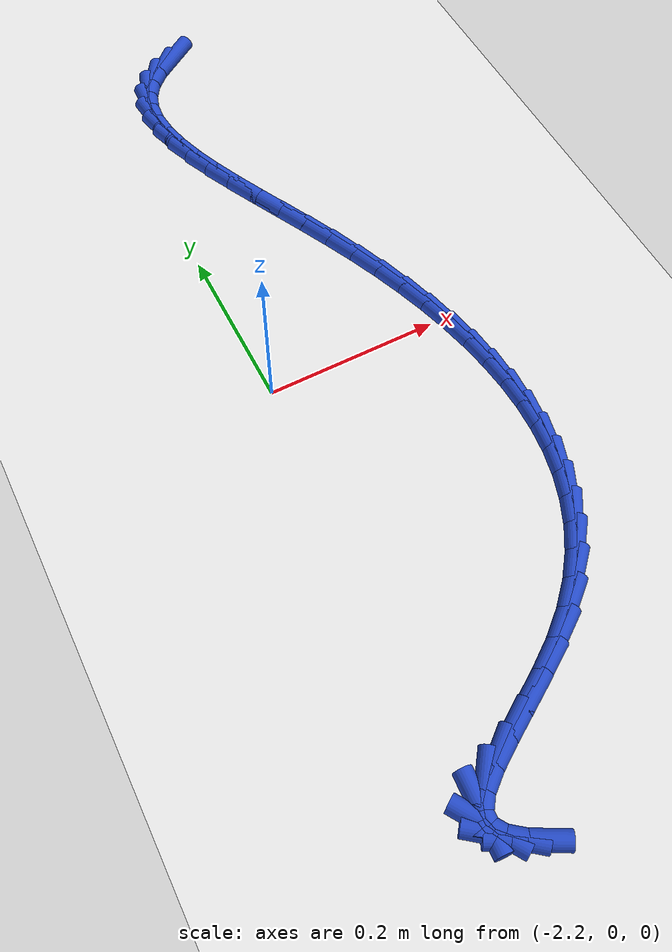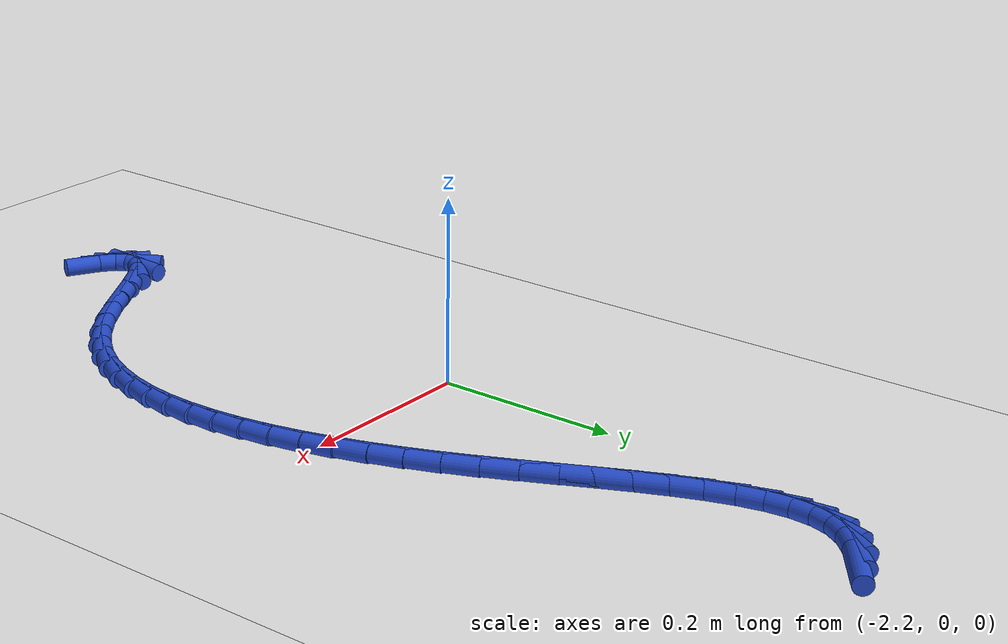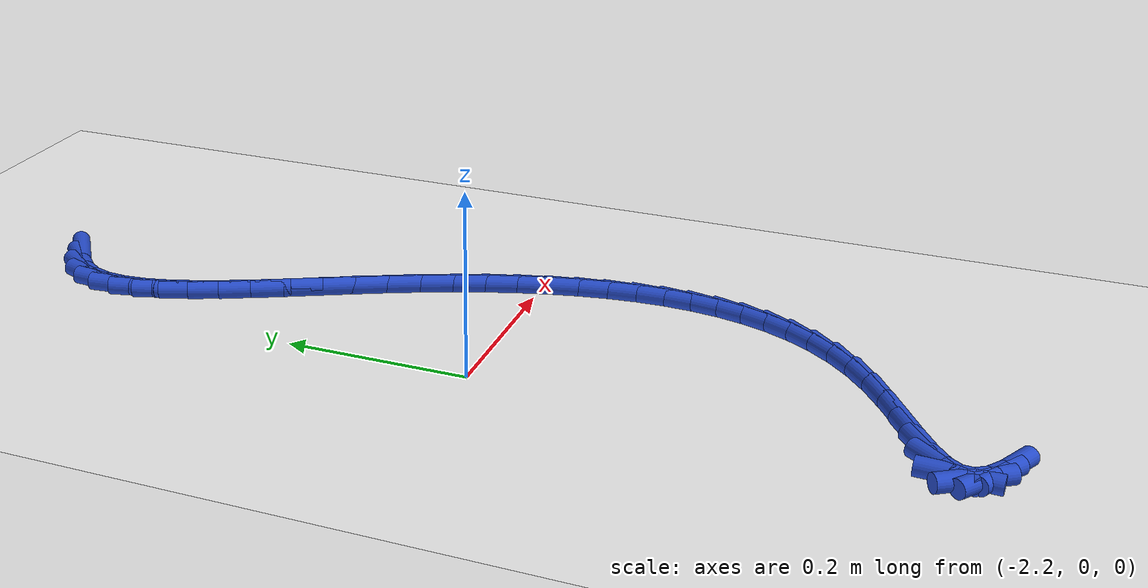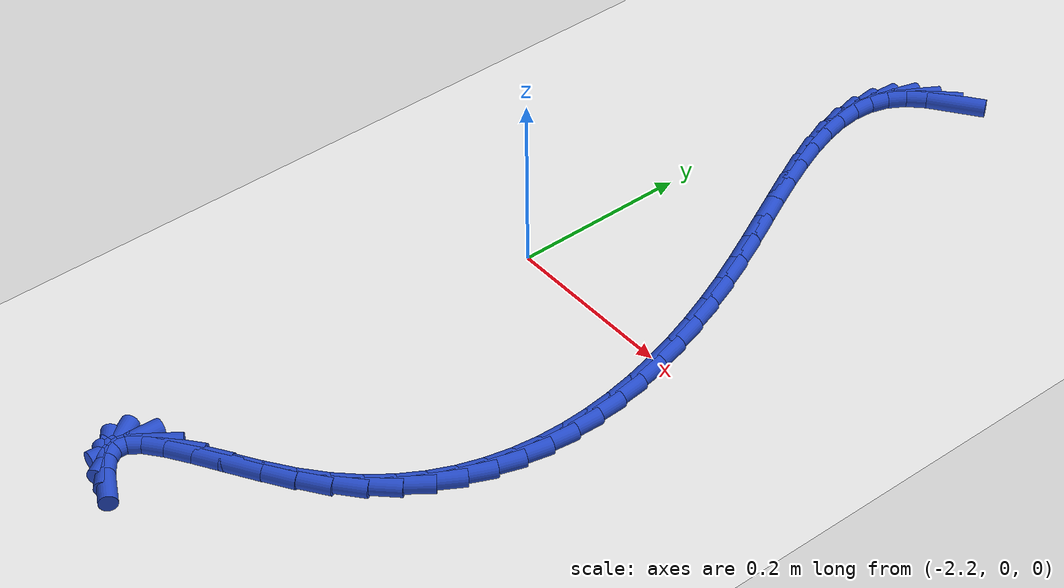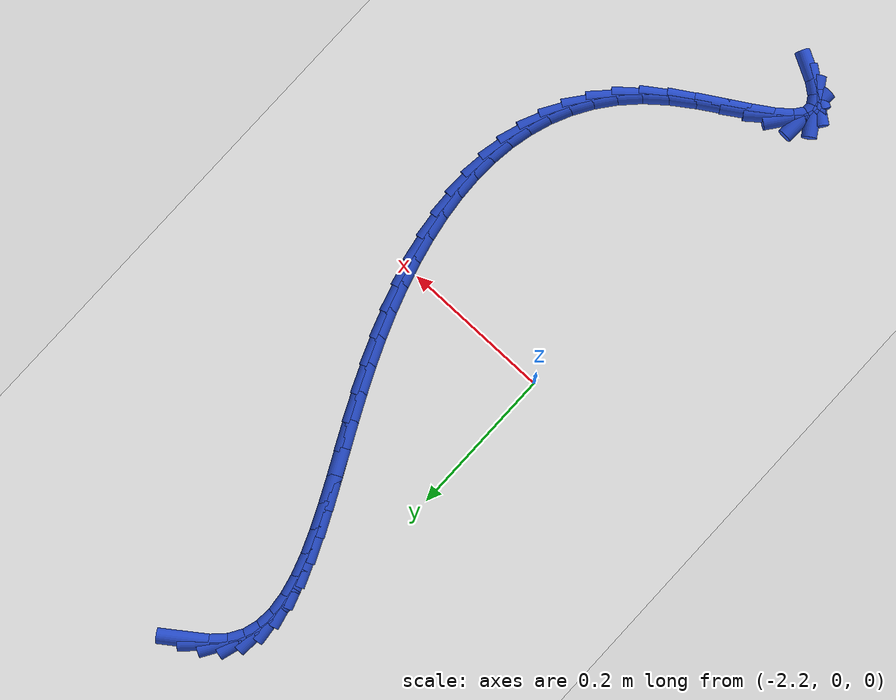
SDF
<sdf version="1.6">
 <world name="default">
  <model name="ground_plane">
   <static>1</static>
   <link name="link">
    <collision name="collision">
     <geometry><plane><normal>0 0 1</normal><size>100 100</size></plane></geometry>
     <surface><friction><ode><mu>100</mu><mu2>50</mu2></ode></friction></surface>
    </collision>
    <visual name="visual">
     <cast_shadows>0</cast_shadows>
     <geometry><plane><normal>0 0 1</normal><size>100 100</size></plane></geometry>
     <material>
      <script><uri>file://media/materials/scripts/gazebo.material</uri><name>Gazebo/WhiteGlow</name></script>
     </material>
    </visual>
   </link>
  </model>
  <model name="line">
   <link name="link_106">
    <pose>-2.0986186612040756 0.5256165768651444 0.01 0 1.57 0.6210910139068517</pose>
    <collision name="collision">
     <geometry><cylinder><radius>0.01</radius><length>0.08</length></cylinder></geometry>
    </collision>
    <visual name="visual">
     <material>
      <script><name>Gazebo/Blue</name><uri>file://media/materials/scripts/gazebo.material</uri></script>
     </material>
     <geometry><cylinder><radius>0.01</radius><length>0.08</length></cylinder></geometry>
    </visual>
   </link>
   <link name="link_107">
    <pose>-2.119865122668184 0.5104135150358946 0.01 0 1.57 0.7860165793328565</pose>
    <collision name="collision">
     <geometry><cylinder><radius>0.01</radius><length>0.08</length></cylinder></geometry>
    </collision>
    <visual name="visual">
     <material>
      <script><name>Gazebo/Blue</name><uri>file://media/materials/scripts/gazebo.material</uri></script>
     </material>
     <geometry><cylinder><radius>0.01</radius><length>0.08</length></cylinder></geometry>
    </visual>
   </link>
   <link name="link_108">
    <pose>-2.136709047449886 0.49354874425703865 0.01 0 1.57 1.0204650539570703</pose>
    <collision name="collision">
     <geometry><cylinder><radius>0.01</radius><length>0.08</length></cylinder></geometry>
    </collision>
    <visual name="visual">
     <material>
      <script><name>Gazebo/Blue</name><uri>file://media/materials/scripts/gazebo.material</uri></script>
     </material>
     <geometry><cylinder><radius>0.01</radius><length>0.08</length></cylinder></geometry>
    </visual>
   </link>
   <link name="link_109">
    <pose>-2.14835118074542 0.4745740517146475 0.01 0 1.57 1.2809299250338098</pose>
    <collision name="collision">
     <geometry><cylinder><radius>0.01</radius><length>0.08</length></cylinder></geometry>
    </collision>
    <visual name="visual">
     <material>
      <script><name>Gazebo/Blue</name><uri>file://media/materials/scripts/gazebo.material</uri></script>
     </material>
     <geometry><cylinder><radius>0.01</radius><length>0.08</length></cylinder></geometry>
    </visual>
   </link>
   <link name="link_110">
    <pose>-2.1546785187539643 0.45336040184977455 0.01 0 1.57 1.5045091424512773</pose>
    <collision name="collision">
     <geometry><cylinder><radius>0.01</radius><length>0.08</length></cylinder></geometry>
    </collision>
    <visual name="visual">
     <material>
      <script><name>Gazebo/Blue</name><uri>file://media/materials/scripts/gazebo.material</uri></script>
     </material>
     <geometry><cylinder><radius>0.01</radius><length>0.08</length></cylinder></geometry>
    </visual>
   </link>
   <link name="link_111">
    <pose>-2.156224028266525 0.43007920182693293 0.01 0 1.57 -1.4647714634028515</pose>
    <collision name="collision">
     <geometry><cylinder><radius>0.01</radius><length>0.08</length></cylinder></geometry>
    </collision>
    <visual name="visual">
     <material>
      <script><name>Gazebo/Blue</name><uri>file://media/materials/scripts/gazebo.material</uri></script>
     </material>
     <geometry><cylinder><radius>0.01</radius><length>0.08</length></cylinder></geometry>
    </visual>
   </link>
   <link name="link_112">
    <pose>-2.15354579972807 0.4049135438921469 0.01 0 1.57 -1.3389220290332065</pose>
    <collision name="collision">
     <geometry><cylinder><radius>0.01</radius><length>0.08</length></cylinder></geometry>
    </collision>
    <visual name="visual">
     <material>
      <script><name>Gazebo/Blue</name><uri>file://media/materials/scripts/gazebo.material</uri></script>
     </material>
     <geometry><cylinder><radius>0.01</radius><length>0.08</length></cylinder></geometry>
    </visual>
   </link>
   <link name="link_113">
    <pose>-2.1472019235835664 0.3780465202914411 0.01 0 1.57 -1.2493734119647293</pose>
    <collision name="collision">
     <geometry><cylinder><radius>0.01</radius><length>0.08</length></cylinder></geometry>
    </collision>
    <visual name="visual">
     <material>
      <script><name>Gazebo/Blue</name><uri>file://media/materials/scripts/gazebo.material</uri></script>
     </material>
     <geometry><cylinder><radius>0.01</radius><length>0.08</length></cylinder></geometry>
    </visual>
   </link>
   <link name="link_114">
    <pose>-2.1377504902779827 0.34966122327083965 0.01 0 1.57 -1.1870250132183828</pose>
    <collision name="collision">
     <geometry><cylinder><radius>0.01</radius><length>0.08</length></cylinder></geometry>
    </collision>
    <visual name="visual">
     <material>
      <script><name>Gazebo/Blue</name><uri>file://media/materials/scripts/gazebo.material</uri></script>
     </material>
     <geometry><cylinder><radius>0.01</radius><length>0.08</length></cylinder></geometry>
    </visual>
   </link>
   <link name="link_115">
    <pose>-2.1257495902562864 0.31994074507636727 0.01 0 1.57 -1.1452621939268486</pose>
    <collision name="collision">
     <geometry><cylinder><radius>0.01</radius><length>0.08</length></cylinder></geometry>
    </collision>
    <visual name="visual">
     <material>
      <script><name>Gazebo/Blue</name><uri>file://media/materials/scripts/gazebo.material</uri></script>
     </material>
     <geometry><cylinder><radius>0.01</radius><length>0.08</length></cylinder></geometry>
    </visual>
   </link>
   <link name="link_116">
    <pose>-2.1117573139634467 0.28906817795404827 0.01 0 1.57 -1.1196680481472614</pose>
    <collision name="collision">
     <geometry><cylinder><radius>0.01</radius><length>0.08</length></cylinder></geometry>
    </collision>
    <visual name="visual">
     <material>
      <script><name>Gazebo/Blue</name><uri>file://media/materials/scripts/gazebo.material</uri></script>
     </material>
     <geometry><cylinder><radius>0.01</radius><length>0.08</length></cylinder></geometry>
    </visual>
   </link>
   <link name="link_117">
    <pose>-2.0963317518444295 0.2572266141499071 0.01 0 1.57 -1.1074669449753645</pose>
    <collision name="collision">
     <geometry><cylinder><radius>0.01</radius><length>0.08</length></cylinder></geometry>
    </collision>
    <visual name="visual">
     <material>
      <script><name>Gazebo/Blue</name><uri>file://media/materials/scripts/gazebo.material</uri></script>
     </material>
     <geometry><cylinder><radius>0.01</radius><length>0.08</length></cylinder></geometry>
    </visual>
   </link>
   <link name="link_118">
    <pose>-2.080030994344204 0.22459914590996807 0.01 0 1.57 -1.1070831840129467</pose>
    <collision name="collision">
     <geometry><cylinder><radius>0.01</radius><length>0.08</length></cylinder></geometry>
    </collision>
    <visual name="visual">
     <material>
      <script><name>Gazebo/Blue</name><uri>file://media/materials/scripts/gazebo.material</uri></script>
     </material>
     <geometry><cylinder><radius>0.01</radius><length>0.08</length></cylinder></geometry>
    </visual>
   </link>
   <link name="link_119">
    <pose>-2.063413131907739 0.1913688654802559 0.01 0 1.57 -1.1178591108249254</pose>
    <collision name="collision">
     <geometry><cylinder><radius>0.01</radius><length>0.08</length></cylinder></geometry>
    </collision>
    <visual name="visual">
     <material>
      <script><name>Gazebo/Blue</name><uri>file://media/materials/scripts/gazebo.material</uri></script>
     </material>
     <geometry><cylinder><radius>0.01</radius><length>0.08</length></cylinder></geometry>
    </visual>
   </link>
   <link name="link_120">
    <pose>-2.04703625498 0.15771886510679514 0.01 0 1.57 -1.1398892110792238</pose>
    <collision name="collision">
     <geometry><cylinder><radius>0.01</radius><length>0.08</length></cylinder></geometry>
    </collision>
    <visual name="visual">
     <material>
      <script><name>Gazebo/Blue</name><uri>file://media/materials/scripts/gazebo.material</uri></script>
     </material>
     <geometry><cylinder><radius>0.01</radius><length>0.08</length></cylinder></geometry>
    </visual>
   </link>
   <link name="link_121">
    <pose>-2.0314578585524496 0.12383211448580801 0.01 0 1.57 -1.1713039662255806</pose>
    <collision name="collision">
     <geometry><cylinder><radius>0.01</radius><length>0.08</length></cylinder></geometry>
    </collision>
    <visual name="visual">
     <material>
      <script><name>Gazebo/Blue</name><uri>file://media/materials/scripts/gazebo.material</uri></script>
     </material>
     <geometry><cylinder><radius>0.01</radius><length>0.08</length></cylinder></geometry>
    </visual>
   </link>
   <link name="link_122">
    <pose>-2.0171181454795666 0.08986744351431845 0.01 0 1.57 -1.2070753282506739</pose>
    <collision name="collision">
     <geometry><cylinder><radius>0.01</radius><length>0.08</length></cylinder></geometry>
    </collision>
    <visual name="visual">
     <material>
      <script><name>Gazebo/Blue</name><uri>file://media/materials/scripts/gazebo.material</uri></script>
     </material>
     <geometry><cylinder><radius>0.01</radius><length>0.08</length></cylinder></geometry>
    </visual>
   </link>
   <link name="link_123">
    <pose>-2.0041998859980374 0.055930700091911735 0.01 0 1.57 -1.246965161077199</pose>
    <collision name="collision">
     <geometry><cylinder><radius>0.01</radius><length>0.08</length></cylinder></geometry>
    </collision>
    <visual name="visual">
     <material>
      <script><name>Gazebo/Blue</name><uri>file://media/materials/scripts/gazebo.material</uri></script>
     </material>
     <geometry><cylinder><radius>0.01</radius><length>0.08</length></cylinder></geometry>
    </visual>
   </link>
   <link name="link_124">
    <pose>-1.9928516690696962 0.02212069729783059 0.01 0 1.57 -1.2915601655051692</pose>
    <collision name="collision">
     <geometry><cylinder><radius>0.01</radius><length>0.08</length></cylinder></geometry>
    </collision>
    <visual name="visual">
     <material>
      <script><name>Gazebo/Blue</name><uri>file://media/materials/scripts/gazebo.material</uri></script>
     </material>
     <geometry><cylinder><radius>0.01</radius><length>0.08</length></cylinder></geometry>
    </visual>
   </link>
   <link name="link_125">
    <pose>-1.983222083656379 -0.011463751788682228 0.01 0 1.57 -1.341516517719449</pose>
    <collision name="collision">
     <geometry><cylinder><radius>0.01</radius><length>0.08</length></cylinder></geometry>
    </collision>
    <visual name="visual">
     <material>
      <script><name>Gazebo/Blue</name><uri>file://media/materials/scripts/gazebo.material</uri></script>
     </material>
     <geometry><cylinder><radius>0.01</radius><length>0.08</length></cylinder></geometry>
    </visual>
   </link>
   <link name="link_126">
    <pose>-1.9754597187199194 -0.04472383408838406 0.01 0 1.57 -1.3975477772300597</pose>
    <collision name="collision">
     <geometry><cylinder><radius>0.01</radius><length>0.08</length></cylinder></geometry>
    </collision>
    <visual name="visual">
     <material>
      <script><name>Gazebo/Blue</name><uri>file://media/materials/scripts/gazebo.material</uri></script>
     </material>
     <geometry><cylinder><radius>0.01</radius><length>0.08</length></cylinder></geometry>
    </visual>
   </link>
   <link name="link_127">
    <pose>-1.969713163222154 -0.07756073652203209 0.01 0 1.57 -1.4603955302845608</pose>
    <collision name="collision">
     <geometry><cylinder><radius>0.01</radius><length>0.08</length></cylinder></geometry>
    </collision>
    <visual name="visual">
     <material>
      <script><name>Gazebo/Blue</name><uri>file://media/materials/scripts/gazebo.material</uri></script>
     </material>
     <geometry><cylinder><radius>0.01</radius><length>0.08</length></cylinder></geometry>
    </visual>
   </link>
   <link name="link_128">
    <pose>-1.9661310061249178 -0.10987564601038369 0.01 0 1.57 -1.5307733617675776</pose>
    <collision name="collision">
     <geometry><cylinder><radius>0.01</radius><length>0.08</length></cylinder></geometry>
    </collision>
    <visual name="visual">
     <material>
      <script><name>Gazebo/Blue</name><uri>file://media/materials/scripts/gazebo.material</uri></script>
     </material>
     <geometry><cylinder><radius>0.01</radius><length>0.08</length></cylinder></geometry>
    </visual>
   </link>
   <link name="link_129">
    <pose>-1.9648618363900459 -0.1415697494741961 0.01 0 1.57 1.5323189122820227</pose>
    <collision name="collision">
     <geometry><cylinder><radius>0.01</radius><length>0.08</length></cylinder></geometry>
    </collision>
    <visual name="visual">
     <material>
      <script><name>Gazebo/Blue</name><uri>file://media/materials/scripts/gazebo.material</uri></script>
     </material>
     <geometry><cylinder><radius>0.01</radius><length>0.08</length></cylinder></geometry>
    </visual>
   </link>
   <link name="link_130">
    <pose>-1.9660542429793726 -0.1725442338342266 0.01 0 1.57 1.4453618723205985</pose>
    <collision name="collision">
     <geometry><cylinder><radius>0.01</radius><length>0.08</length></cylinder></geometry>
    </collision>
    <visual name="visual">
     <material>
      <script><name>Gazebo/Blue</name><uri>file://media/materials/scripts/gazebo.material</uri></script>
     </material>
     <geometry><cylinder><radius>0.01</radius><length>0.08</length></cylinder></geometry>
    </visual>
   </link>
   <link name="link_131">
    <pose>-1.9698568148547342 -0.20270028601123238 0.01 0 1.57 1.350048557768131</pose>
    <collision name="collision">
     <geometry><cylinder><radius>0.01</radius><length>0.08</length></cylinder></geometry>
    </collision>
    <visual name="visual">
     <material>
      <script><name>Gazebo/Blue</name><uri>file://media/materials/scripts/gazebo.material</uri></script>
     </material>
     <geometry><cylinder><radius>0.01</radius><length>0.08</length></cylinder></geometry>
    </visual>
   </link>
   <link name="link_132">
    <pose>-1.9764181409779655 -0.23193909292597084 0.01 0 1.57 1.2470990420005907</pose>
    <collision name="collision">
     <geometry><cylinder><radius>0.01</radius><length>0.08</length></cylinder></geometry>
    </collision>
    <visual name="visual">
     <material>
      <script><name>Gazebo/Blue</name><uri>file://media/materials/scripts/gazebo.material</uri></script>
     </material>
     <geometry><cylinder><radius>0.01</radius><length>0.08</length></cylinder></geometry>
    </visual>
   </link>
   <link name="link_133">
    <pose>-1.985886810310901 -0.2601618414991992 0.01 0 1.57 1.1379849571906415</pose>
    <collision name="collision">
     <geometry><cylinder><radius>0.01</radius><length>0.08</length></cylinder></geometry>
    </collision>
    <visual name="visual">
     <material>
      <script><name>Gazebo/Blue</name><uri>file://media/materials/scripts/gazebo.material</uri></script>
     </material>
     <geometry><cylinder><radius>0.01</radius><length>0.08</length></cylinder></geometry>
    </visual>
   </link>
   <link name="link_134">
    <pose>-1.9984114118153768 -0.2872697186516747 0.01 0 1.57 1.0249254804948271</pose>
    <collision name="collision">
     <geometry><cylinder><radius>0.01</radius><length>0.08</length></cylinder></geometry>
    </collision>
    <visual name="visual">
     <material>
      <script><name>Gazebo/Blue</name><uri>file://media/materials/scripts/gazebo.material</uri></script>
     </material>
     <geometry><cylinder><radius>0.01</radius><length>0.08</length></cylinder></geometry>
    </visual>
   </link>
   <link name="link_135">
    <pose>-2.0141405344532273 -0.3131639113041547 0.01 0 1.57 0.9106882217561385</pose>
    <collision name="collision">
     <geometry><cylinder><radius>0.01</radius><length>0.08</length></cylinder></geometry>
    </collision>
    <visual name="visual">
     <material>
      <script><name>Gazebo/Blue</name><uri>file://media/materials/scripts/gazebo.material</uri></script>
     </material>
     <geometry><cylinder><radius>0.01</radius><length>0.08</length></cylinder></geometry>
    </visual>
   </link>
   <link name="link_136">
    <pose>-2.0332227671862886 -0.3377456063773964 0.01 0 1.57 0.7982148889231645</pose>
    <collision name="collision">
     <geometry><cylinder><radius>0.01</radius><length>0.08</length></cylinder></geometry>
    </collision>
    <visual name="visual">
     <material>
      <script><name>Gazebo/Blue</name><uri>file://media/materials/scripts/gazebo.material</uri></script>
     </material>
     <geometry><cylinder><radius>0.01</radius><length>0.08</length></cylinder></geometry>
    </visual>
   </link>
   <link name="link_137">
    <pose>-2.0558066989763946 -0.3609159907921572 0.01 0 1.57 0.6902873982304235</pose>
    <collision name="collision">
     <geometry><cylinder><radius>0.01</radius><length>0.08</length></cylinder></geometry>
    </collision>
    <visual name="visual">
     <material>
      <script><name>Gazebo/Blue</name><uri>file://media/materials/scripts/gazebo.material</uri></script>
     </material>
     <geometry><cylinder><radius>0.01</radius><length>0.08</length></cylinder></geometry>
    </visual>
   </link>
   <link name="link_138">
    <pose>-2.0820359937336965 -0.38257665093588494 0.01 0 1.57 0.6020762488200162</pose>
    <collision name="collision">
     <geometry><cylinder><radius>0.01</radius><length>0.08</length></cylinder></geometry>
    </collision>
    <visual name="visual">
     <material>
      <script><name>Gazebo/Blue</name><uri>file://media/materials/scripts/gazebo.material</uri></script>
     </material>
     <geometry><cylinder><radius>0.01</radius><length>0.08</length></cylinder></geometry>
    </visual>
   </link>
   <link name="link_139">
    <pose>-2.111304940675628 -0.4026899543304823 0.01 0 1.57 0.5539556340317373</pose>
    <collision name="collision">
     <geometry><cylinder><radius>0.01</radius><length>0.08</length></cylinder></geometry>
    </collision>
    <visual name="visual">
     <material>
      <script><name>Gazebo/Blue</name><uri>file://media/materials/scripts/gazebo.material</uri></script>
     </material>
     <geometry><cylinder><radius>0.01</radius><length>0.08</length></cylinder></geometry>
    </visual>
   </link>
   <link name="link_140">
    <pose>-2.141461590637444 -0.4213436825582937 0.01 0 1.57 0.5423796019638383</pose>
    <collision name="collision">
     <geometry><cylinder><radius>0.01</radius><length>0.08</length></cylinder></geometry>
    </collision>
    <visual name="visual">
     <material>
      <script><name>Gazebo/Blue</name><uri>file://media/materials/scripts/gazebo.material</uri></script>
     </material>
     <geometry><cylinder><radius>0.01</radius><length>0.08</length></cylinder></geometry>
    </visual>
   </link>
   <link name="link_141">
    <pose>-2.1701629704432794 -0.43864111099431075 0.01 0 1.57 0.572338259260847</pose>
    <collision name="collision">
     <geometry><cylinder><radius>0.01</radius><length>0.08</length></cylinder></geometry>
    </collision>
    <visual name="visual">
     <material>
      <script><name>Gazebo/Blue</name><uri>file://media/materials/scripts/gazebo.material</uri></script>
     </material>
     <geometry><cylinder><radius>0.01</radius><length>0.08</length></cylinder></geometry>
    </visual>
   </link>
   <link name="link_142">
    <pose>-2.1950661069172677 -0.4546855150135248 0.01 0 1.57 0.6709961807676353</pose>
    <collision name="collision">
     <geometry><cylinder><radius>0.01</radius><length>0.08</length></cylinder></geometry>
    </collision>
    <visual name="visual">
     <material>
      <script><name>Gazebo/Blue</name><uri>file://media/materials/scripts/gazebo.material</uri></script>
     </material>
     <geometry><cylinder><radius>0.01</radius><length>0.08</length></cylinder></geometry>
    </visual>
   </link>
   <link name="link_143">
    <pose>-2.213828026883543 -0.46958016999092766 0.01 0 1.57 0.931614319916363</pose>
    <collision name="collision">
     <geometry><cylinder><radius>0.01</radius><length>0.08</length></cylinder></geometry>
    </collision>
    <visual name="visual">
     <material>
      <script><name>Gazebo/Blue</name><uri>file://media/materials/scripts/gazebo.material</uri></script>
     </material>
     <geometry><cylinder><radius>0.01</radius><length>0.08</length></cylinder></geometry>
    </visual>
   </link>
   <link name="link_144">
    <pose>-2.224121550576044 -0.4834290809416069 0.01 0 1.57 1.5164764632096792</pose>
    <collision name="collision">
     <geometry><cylinder><radius>0.01</radius><length>0.08</length></cylinder></geometry>
    </collision>
    <visual name="visual">
     <material>
      <script><name>Gazebo/Blue</name><uri>file://media/materials/scripts/gazebo.material</uri></script>
     </material>
     <geometry><cylinder><radius>0.01</radius><length>0.08</length></cylinder></geometry>
    </visual>
   </link>
   <link name="link_145">
    <pose>-2.224826388495034 -0.4963920100313073 0.01 0 1.57 -0.9971742199406656</pose>
    <collision name="collision">
     <geometry><cylinder><radius>0.01</radius><length>0.08</length></cylinder></geometry>
    </collision>
    <visual name="visual">
     <material>
      <script><name>Gazebo/Blue</name><uri>file://media/materials/scripts/gazebo.material</uri></script>
     </material>
     <geometry><cylinder><radius>0.01</radius><length>0.08</length></cylinder></geometry>
    </visual>
   </link>
   <link name="link_146">
    <pose>-2.2168595536321893 -0.5087228408095635 0.01 0 1.57 -0.6564727485138786</pose>
    <collision name="collision">
     <geometry><cylinder><radius>0.01</radius><length>0.08</length></cylinder></geometry>
    </collision>
    <visual name="visual">
     <material>
      <script><name>Gazebo/Blue</name><uri>file://media/materials/scripts/gazebo.material</uri></script>
     </material>
     <geometry><cylinder><radius>0.01</radius><length>0.08</length></cylinder></geometry>
    </visual>
   </link>
   <link name="link_147">
    <pose>-2.201334344339549 -0.5206845250177045 0.01 0 1.57 -0.49483491841231375</pose>
    <collision name="collision">
     <geometry><cylinder><radius>0.01</radius><length>0.08</length></cylinder></geometry>
    </collision>
    <visual name="visual">
     <material>
      <script><name>Gazebo/Blue</name><uri>file://media/materials/scripts/gazebo.material</uri></script>
     </material>
     <geometry><cylinder><radius>0.01</radius><length>0.08</length></cylinder></geometry>
    </visual>
   </link>
  </model>
 </world>
</sdf>
